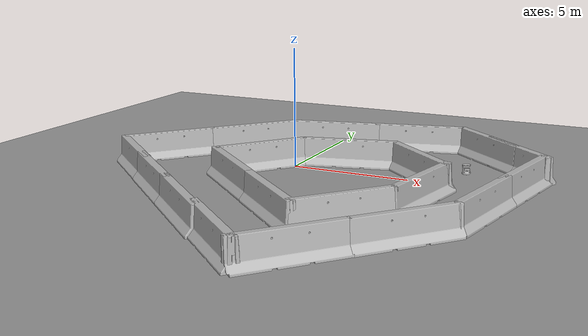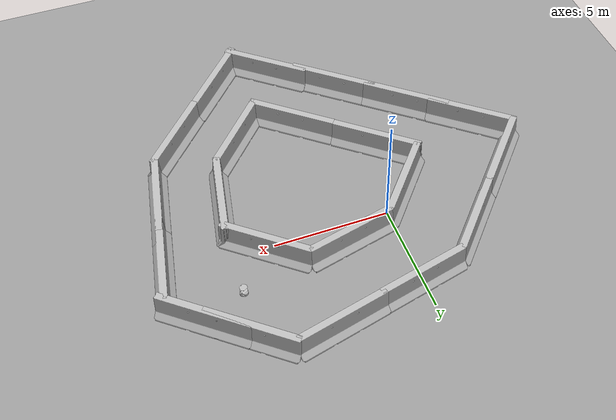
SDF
<sdf version="1.6">
 <world name="default">
  <light name="sun" type="directional">
   <pose>0 0 10 0 -0 0</pose>
   <diffuse>0.8 0.8 0.8 1</diffuse>
   <specular>0.2 0.2 0.2 1</specular>
   <attenuation>
    <range>1000</range>
    <constant>0.9</constant>
    <linear>0.01</linear>
    <quadratic>0.001</quadratic>
   </attenuation>
   <direction>0.5 0.1 -0.9</direction>
  </light>
  <scene><ambient>0.4 0.4 0.4 1</ambient><background>0.7 0.7 0.7 1</background><shadows>1</shadows></scene>
  <physics name="default_physics" default="0" type="ode">
   <max_step_size>0.01</max_step_size>
   <real_time_factor>1</real_time_factor>
   <real_time_update_rate>100</real_time_update_rate>
  </physics>
  <model name="jersey_barrier">
   <static>1</static>
   <link name="link">
    <visual name="visual">
     <geometry>
      <mesh><uri>model://jersey_barrier/meshes/jersey_barrier.dae</uri><scale>1 1 1</scale></mesh>
     </geometry>
    </visual>
    <collision name="upright">
     <pose>0 0 0.5715 0 -0 0</pose>
     <geometry><box><size>4.06542 0.3063 1.143</size></box></geometry>
    </collision>
    <collision name="base">
     <pose>0 0 0.032258 0 -0 0</pose>
     <geometry><box><size>4.06542 0.8107 0.064516</size></box></geometry>
    </collision>
    <collision name="base2">
     <pose>0 0 0.1 0 -0 0</pose>
     <geometry><box><size>4.06542 0.65 0.1</size></box></geometry>
    </collision>
    <collision name="base3">
     <pose>0 0 0.2 0 -0 0</pose>
     <geometry><box><size>4.06542 0.5 0.1</size></box></geometry>
    </collision>
    <collision name="left-angle">
     <pose>0 -0.224 0.2401 0.9 -0 0</pose>
     <geometry><box><size>4.06542 0.5 0.064516</size></box></geometry>
    </collision>
    <collision name="right-angle">
     <pose>0 0.224 0.2401 -0.9 0 0</pose>
     <geometry><box><size>4.06542 0.5 0.064516</size></box></geometry>
    </collision>
    <velocity_decay><linear>0</linear><angular>0</angular></velocity_decay>
   </link>
   <pose>-1.10372 -0.883454 0 0 0 -2.26454</pose>
  </model>
  <model name="ground_plane_0">
   <static>1</static>
   <link name="link">
    <collision name="collision">
     <geometry><plane><normal>0 0 1</normal><size>100 100</size></plane></geometry>
     <surface><friction><ode><mu>100</mu><mu2>50</mu2></ode></friction></surface>
    </collision>
    <visual name="visual">
     <cast_shadows>0</cast_shadows>
     <geometry><plane><normal>0 0 1</normal><size>100 100</size></plane></geometry>
     <material>
      <script><uri>file://media/materials/scripts/gazebo.material</uri><name>Gazebo/Grey</name></script>
     </material>
    </visual>
    <velocity_decay><linear>0</linear><angular>0</angular></velocity_decay>
   </link>
   <pose>0.497681 0 0 0 -0 0</pose>
  </model>
  <gravity>0 0 -9.8</gravity>
  <magnetic_field>6e-06 2.3e-05 -4.2e-05</magnetic_field>
  <atmosphere type="adiabatic"/>
  <spherical_coordinates>
   <surface_model>EARTH_WGS84</surface_model>
   <latitude_deg>0</latitude_deg>
   <longitude_deg>0</longitude_deg>
   <elevation>0</elevation>
   <heading_deg>0</heading_deg>
  </spherical_coordinates>
  <model name="mobile_base">
   <link name="base_footprint">
    <inertial>
     <pose>-0.002635 -4.1e-05 0.129243 0 -0 0</pose>
     <mass>4.6973</mass>
     <inertia>
      <ixx>0.1365</ixx>
      <ixy>-2.51802e-05</ixy>
      <ixz>0.0108194</ixz>
      <iyy>0.132157</iyy>
      <iyz>4.89572e-05</iyz>
      <izz>0.0741648</izz>
     </inertia>
    </inertial>
    <collision name="base_footprint_fixed_joint_lump__base_collision">
     <pose>0 0 0.06969 0 -0 0</pose>
     <geometry><cylinder><length>0.10938</length><radius>0.178</radius></cylinder></geometry>
    </collision>
    <collision name="base_footprint_fixed_joint_lump__camera_link_collision_1">
     <pose>-0.087 -0.0015 0.2972 0 -0 0</pose>
     <geometry><box><size>0.073 0.276 0.072</size></box></geometry>
    </collision>
    <collision name="base_footprint_fixed_joint_lump__caster_back_link_collision_2">
     <pose>-0.135 0 0.0192 -1.5708 0 0</pose>
     <geometry><cylinder><length>0.0176</length><radius>0.017</radius></cylinder></geometry>
     <surface>
      <contact><ode><kp>1e+06</kp><kd>100</kd><max_vel>1</max_vel><min_depth>0.001</min_depth></ode></contact>
      <friction><ode><mu>0</mu><mu2>0</mu2></ode></friction>
     </surface>
    </collision>
    <collision name="base_footprint_fixed_joint_lump__caster_front_link_collision_3">
     <pose>0.115 0 0.0172 -1.5708 0 0</pose>
     <geometry><cylinder><length>0.0176</length><radius>0.017</radius></cylinder></geometry>
     <surface>
      <contact><ode><kp>1e+06</kp><kd>100</kd><max_vel>1</max_vel><min_depth>0.001</min_depth></ode></contact>
      <friction><ode><mu>0</mu><mu2>0</mu2></ode></friction>
     </surface>
    </collision>
    <collision name="base_footprint_fixed_joint_lump__mount_asus_xtion_pro_link_collision_4">
     <pose>-0.1024 0 0.2822 0 -0 0</pose>
     <geometry><box><size>0.033 0.276 0.012</size></box></geometry>
    </collision>
    <collision name="base_footprint_fixed_joint_lump__plate_bottom_link_collision_5">
     <pose>0 0 0.1408 0 -0 0</pose>
     <geometry><cylinder><length>0.006</length><radius>0.17</radius></cylinder></geometry>
    </collision>
    <collision name="base_footprint_fixed_joint_lump__plate_middle_link_collision_6">
     <pose>0 0 0.1976 0 -0 0</pose>
     <geometry><cylinder><length>0.006</length><radius>0.17</radius></cylinder></geometry>
    </collision>
    <collision name="base_footprint_fixed_joint_lump__plate_top_link_collision_7">
     <pose>0 0 0.4068 0 -0 0</pose>
     <geometry><cylinder><length>0.006</length><radius>0.17</radius></cylinder></geometry>
    </collision>
    <collision name="base_footprint_fixed_joint_lump__pole_bottom_0_link_collision_8">
     <pose>0.12 0.082 0.113 0 -0 0</pose>
     <geometry><cylinder><length>0.0492</length><radius>0.006</radius></cylinder></geometry>
    </collision>
    <collision name="base_footprint_fixed_joint_lump__pole_bottom_1_link_collision_9">
     <pose>0.055 0.12 0.113 0 -0 0</pose>
     <geometry><cylinder><length>0.0492</length><radius>0.006</radius></cylinder></geometry>
    </collision>
    <collision name="base_footprint_fixed_joint_lump__pole_bottom_2_link_collision_10">
     <pose>-0.055 0.12 0.113 0 -0 0</pose>
     <geometry><cylinder><length>0.0492</length><radius>0.006</radius></cylinder></geometry>
    </collision>
    <collision name="base_footprint_fixed_joint_lump__pole_bottom_3_link_collision_11">
     <pose>0.12 -0.082 0.113 0 -0 0</pose>
     <geometry><cylinder><length>0.0492</length><radius>0.006</radius></cylinder></geometry>
    </collision>
    <collision name="base_footprint_fixed_joint_lump__pole_bottom_4_link_collision_12">
     <pose>0.055 -0.12 0.113 0 -0 0</pose>
     <geometry><cylinder><length>0.0492</length><radius>0.006</radius></cylinder></geometry>
    </collision>
    <collision name="base_footprint_fixed_joint_lump__pole_bottom_5_link_collision_13">
     <pose>-0.055 -0.12 0.113 0 -0 0</pose>
     <geometry><cylinder><length>0.0492</length><radius>0.006</radius></cylinder></geometry>
    </collision>
    <collision name="base_footprint_fixed_joint_lump__pole_kinect_0_link_collision_14">
     <pose>-0.1024 0.098 0.2474 0 -0 0</pose>
     <geometry><cylinder><length>0.0936</length><radius>0.006</radius></cylinder></geometry>
    </collision>
    <collision name="base_footprint_fixed_joint_lump__pole_kinect_1_link_collision_15">
     <pose>-0.1024 -0.098 0.2474 0 -0 0</pose>
     <geometry><cylinder><length>0.0936</length><radius>0.006</radius></cylinder></geometry>
    </collision>
    <collision name="base_footprint_fixed_joint_lump__pole_middle_0_link_collision_16">
     <pose>0.0381 0.1505 0.1742 0 -0 0</pose>
     <geometry><cylinder><length>0.0608</length><radius>0.006</radius></cylinder></geometry>
    </collision>
    <collision name="base_footprint_fixed_joint_lump__pole_middle_1_link_collision_17">
     <pose>0.0381 -0.1505 0.1742 0 -0 0</pose>
     <geometry><cylinder><length>0.0608</length><radius>0.006</radius></cylinder></geometry>
    </collision>
    <collision name="base_footprint_fixed_joint_lump__pole_middle_2_link_collision_18">
     <pose>-0.0381 0.1505 0.1742 0 -0 0</pose>
     <geometry><cylinder><length>0.0608</length><radius>0.006</radius></cylinder></geometry>
    </collision>
    <collision name="base_footprint_fixed_joint_lump__pole_middle_3_link_collision_19">
     <pose>-0.0381 -0.1505 0.1742 0 -0 0</pose>
     <geometry><cylinder><length>0.0608</length><radius>0.006</radius></cylinder></geometry>
    </collision>
    <collision name="base_footprint_fixed_joint_lump__pole_top_0_link_collision_20">
     <pose>0.0381 0.1505 0.3022 0 -0 0</pose>
     <geometry><cylinder><length>0.2032</length><radius>0.006</radius></cylinder></geometry>
    </collision>
    <collision name="base_footprint_fixed_joint_lump__pole_top_1_link_collision_21">
     <pose>0.0381 -0.1505 0.3022 0 -0 0</pose>
     <geometry><cylinder><length>0.2032</length><radius>0.006</radius></cylinder></geometry>
    </collision>
    <collision name="base_footprint_fixed_joint_lump__pole_top_2_link_collision_22">
     <pose>-0.0381 0.1505 0.3022 0 -0 0</pose>
     <geometry><cylinder><length>0.2032</length><radius>0.006</radius></cylinder></geometry>
    </collision>
    <collision name="base_footprint_fixed_joint_lump__pole_top_3_link_collision_23">
     <pose>-0.0381 -0.1505 0.3022 0 -0 0</pose>
     <geometry><cylinder><length>0.2032</length><radius>0.006</radius></cylinder></geometry>
    </collision>
    <visual name="base_footprint_fixed_joint_lump__base_link_visual">
     <pose>0.001 0 0.06219 0 -0 0</pose>
     <geometry>
      <mesh><scale>1 1 1</scale><uri>/opt/ros/kinetic/share/kobuki_description/meshes/main_body.dae</uri></mesh>
     </geometry>
     <material><script><uri>__default__</uri><name>__default__</name></script></material>
    </visual>
    <visual name="base_footprint_fixed_joint_lump__camera_link_visual_1">
     <pose>-0.102 0.002 0.3012 0 -0 0</pose>
     <geometry>
      <mesh>
       <scale>1 1 1</scale>
       <uri>/opt/ros/kinetic/share/turtlebot_description/meshes/sensors/xtion_pro_camera.dae</uri>
      </mesh>
     </geometry>
     <material><script><uri>__default__</uri><name>__default__</name></script></material>
    </visual>
    <visual name="base_footprint_fixed_joint_lump__mount_asus_xtion_pro_link_visual_2">
     <pose>-0.1024 0 0.2822 -1.5708 0 0</pose>
     <geometry>
      <mesh>
       <scale>1 1 1</scale>
       <uri>/opt/ros/kinetic/share/turtlebot_description/meshes/sensors/xtion_pro_stack.dae</uri>
      </mesh>
     </geometry>
    </visual>
    <visual name="base_footprint_fixed_joint_lump__plate_bottom_link_visual_3">
     <pose>0.02364 0 0.1408 0 -0 0</pose>
     <geometry>
      <mesh>
       <scale>1 1 1</scale>
       <uri>/opt/ros/kinetic/share/turtlebot_description/meshes/stacks/hexagons/plate_bottom.dae</uri>
      </mesh>
     </geometry>
    </visual>
    <visual name="base_footprint_fixed_joint_lump__plate_middle_link_visual_4">
     <pose>-0.01364 0 0.1976 0 -0 0</pose>
     <geometry>
      <mesh>
       <scale>1 1 1</scale>
       <uri>/opt/ros/kinetic/share/turtlebot_description/meshes/stacks/hexagons/plate_middle.dae</uri>
      </mesh>
     </geometry>
    </visual>
    <visual name="base_footprint_fixed_joint_lump__plate_top_link_visual_5">
     <pose>-0.01364 0 0.4068 0 -0 0</pose>
     <geometry>
      <mesh>
       <scale>1 1 1</scale>
       <uri>/opt/ros/kinetic/share/turtlebot_description/meshes/stacks/hexagons/plate_top.dae</uri>
      </mesh>
     </geometry>
    </visual>
    <visual name="base_footprint_fixed_joint_lump__pole_bottom_0_link_visual_6">
     <pose>0.12 0.082 0.113 0 -0 0</pose>
     <geometry>
      <mesh>
       <scale>1 1 1</scale>
       <uri>/opt/ros/kinetic/share/turtlebot_description/meshes/stacks/hexagons/pole_bottom.dae</uri>
      </mesh>
     </geometry>
    </visual>
    <visual name="base_footprint_fixed_joint_lump__pole_bottom_1_link_visual_7">
     <pose>0.055 0.12 0.113 0 -0 0</pose>
     <geometry>
      <mesh>
       <scale>1 1 1</scale>
       <uri>/opt/ros/kinetic/share/turtlebot_description/meshes/stacks/hexagons/pole_bottom.dae</uri>
      </mesh>
     </geometry>
    </visual>
    <visual name="base_footprint_fixed_joint_lump__pole_bottom_2_link_visual_8">
     <pose>-0.055 0.12 0.113 0 -0 0</pose>
     <geometry>
      <mesh>
       <scale>1 1 1</scale>
       <uri>/opt/ros/kinetic/share/turtlebot_description/meshes/stacks/hexagons/pole_bottom.dae</uri>
      </mesh>
     </geometry>
    </visual>
    <visual name="base_footprint_fixed_joint_lump__pole_bottom_3_link_visual_9">
     <pose>0.12 -0.082 0.113 0 -0 0</pose>
     <geometry>
      <mesh>
       <scale>1 1 1</scale>
       <uri>/opt/ros/kinetic/share/turtlebot_description/meshes/stacks/hexagons/pole_bottom.dae</uri>
      </mesh>
     </geometry>
    </visual>
    <visual name="base_footprint_fixed_joint_lump__pole_bottom_4_link_visual_10">
     <pose>0.055 -0.12 0.113 0 -0 0</pose>
     <geometry>
      <mesh>
       <scale>1 1 1</scale>
       <uri>/opt/ros/kinetic/share/turtlebot_description/meshes/stacks/hexagons/pole_bottom.dae</uri>
      </mesh>
     </geometry>
    </visual>
    <visual name="base_footprint_fixed_joint_lump__pole_bottom_5_link_visual_11">
     <pose>-0.055 -0.12 0.113 0 -0 0</pose>
     <geometry>
      <mesh>
       <scale>1 1 1</scale>
       <uri>/opt/ros/kinetic/share/turtlebot_description/meshes/stacks/hexagons/pole_bottom.dae</uri>
      </mesh>
     </geometry>
    </visual>
    <visual name="base_footprint_fixed_joint_lump__pole_kinect_0_link_visual_12">
     <pose>-0.1024 0.098 0.2374 0 -0 0</pose>
     <geometry>
      <mesh>
       <scale>1 1 1</scale>
       <uri>/opt/ros/kinetic/share/turtlebot_description/meshes/sensors/sensor_pole.dae</uri>
      </mesh>
     </geometry>
    </visual>
    <visual name="base_footprint_fixed_joint_lump__pole_kinect_1_link_visual_13">
     <pose>-0.1024 -0.098 0.2374 0 -0 0</pose>
     <geometry>
      <mesh>
       <scale>1 1 1</scale>
       <uri>/opt/ros/kinetic/share/turtlebot_description/meshes/sensors/sensor_pole.dae</uri>
      </mesh>
     </geometry>
    </visual>
    <visual name="base_footprint_fixed_joint_lump__pole_middle_0_link_visual_14">
     <pose>0.0381 0.1505 0.1742 3.14159 -0 3.14159</pose>
     <geometry>
      <mesh>
       <scale>1 1 1</scale>
       <uri>/opt/ros/kinetic/share/turtlebot_description/meshes/stacks/hexagons/pole_middle.dae</uri>
      </mesh>
     </geometry>
    </visual>
    <visual name="base_footprint_fixed_joint_lump__pole_middle_1_link_visual_15">
     <pose>0.0381 -0.1505 0.1742 3.14159 -0 3.14159</pose>
     <geometry>
      <mesh>
       <scale>1 1 1</scale>
       <uri>/opt/ros/kinetic/share/turtlebot_description/meshes/stacks/hexagons/pole_middle.dae</uri>
      </mesh>
     </geometry>
    </visual>
    <visual name="base_footprint_fixed_joint_lump__pole_middle_2_link_visual_16">
     <pose>-0.0381 0.1505 0.1742 3.14159 -0 3.14159</pose>
     <geometry>
      <mesh>
       <scale>1 1 1</scale>
       <uri>/opt/ros/kinetic/share/turtlebot_description/meshes/stacks/hexagons/pole_middle.dae</uri>
      </mesh>
     </geometry>
    </visual>
    <visual name="base_footprint_fixed_joint_lump__pole_middle_3_link_visual_17">
     <pose>-0.0381 -0.1505 0.1742 3.14159 -0 3.14159</pose>
     <geometry>
      <mesh>
       <scale>1 1 1</scale>
       <uri>/opt/ros/kinetic/share/turtlebot_description/meshes/stacks/hexagons/pole_middle.dae</uri>
      </mesh>
     </geometry>
    </visual>
    <visual name="base_footprint_fixed_joint_lump__pole_top_0_link_visual_18">
     <pose>0.0381 0.1505 0.3022 0 -0 0</pose>
     <geometry>
      <mesh>
       <scale>1 1 1</scale>
       <uri>/opt/ros/kinetic/share/turtlebot_description/meshes/stacks/hexagons/pole_top.dae</uri>
      </mesh>
     </geometry>
    </visual>
    <visual name="base_footprint_fixed_joint_lump__pole_top_1_link_visual_19">
     <pose>0.0381 -0.1505 0.3022 0 -0 0</pose>
     <geometry>
      <mesh>
       <scale>1 1 1</scale>
       <uri>/opt/ros/kinetic/share/turtlebot_description/meshes/stacks/hexagons/pole_top.dae</uri>
      </mesh>
     </geometry>
    </visual>
    <visual name="base_footprint_fixed_joint_lump__pole_top_2_link_visual_20">
     <pose>-0.0381 0.1505 0.3022 0 -0 0</pose>
     <geometry>
      <mesh>
       <scale>1 1 1</scale>
       <uri>/opt/ros/kinetic/share/turtlebot_description/meshes/stacks/hexagons/pole_top.dae</uri>
      </mesh>
     </geometry>
    </visual>
    <visual name="base_footprint_fixed_joint_lump__pole_top_3_link_visual_21">
     <pose>-0.0381 -0.1505 0.3022 0 -0 0</pose>
     <geometry>
      <mesh>
       <scale>1 1 1</scale>
       <uri>/opt/ros/kinetic/share/turtlebot_description/meshes/stacks/hexagons/pole_top.dae</uri>
      </mesh>
     </geometry>
    </visual>
    <sensor name="bumpers" type="contact">
     <always_on>1</always_on>
     <update_rate>50</update_rate>
     <visualize>1</visualize>
     <contact>
      <collision>base_footprint_fixed_joint_lump__base_collision</collision>
      <topic>__default_topic__</topic>
     </contact>
     <pose>0 0 0.0102 0 -0 0</pose>
    </sensor>
    <sensor name="camera" type="depth">
     <always_on>1</always_on>
     <update_rate>20</update_rate>
     <camera name="__default__">
      <horizontal_fov>1.0472</horizontal_fov>
      <image><format>B8G8R8</format><width>640</width><height>480</height></image>
      <clip><near>0.05</near><far>8</far></clip>
     </camera>
     <plugin name="kinect_camera_controller" filename="libgazebo_ros_openni_kinect.so">
      <cameraName>camera</cameraName>
      <alwaysOn>true</alwaysOn>
      <updateRate>10</updateRate>
      <imageTopicName>rgb/image_raw</imageTopicName>
      <depthImageTopicName>depth/image_raw</depthImageTopicName>
      <pointCloudTopicName>depth/points</pointCloudTopicName>
      <cameraInfoTopicName>rgb/camera_info</cameraInfoTopicName>
      <depthImageCameraInfoTopicName>depth/camera_info</depthImageCameraInfoTopicName>
      <frameName>camera_depth_optical_frame</frameName>
      <baseline>0.1</baseline>
      <distortion_k1>0.0</distortion_k1>
      <distortion_k2>0.0</distortion_k2>
      <distortion_k3>0.0</distortion_k3>
      <distortion_t1>0.0</distortion_t1>
      <distortion_t2>0.0</distortion_t2>
      <pointCloudCutoff>0.4</pointCloudCutoff>
      <robotNamespace>/</robotNamespace>
     </plugin>
     <pose>-0.087 -0.0015 0.2972 0 -0 0</pose>
    </sensor>
    <sensor name="cliff_sensor_front" type="ray">
     <always_on>1</always_on>
     <update_rate>50</update_rate>
     <visualize>1</visualize>
     <ray>
      <scan>
       <horizontal>
        <samples>50</samples>
        <resolution>1</resolution>
        <min_angle>-0.0436</min_angle>
        <max_angle>0.0436</max_angle>
       </horizontal>
       <vertical><samples>1</samples><min_angle>0</min_angle><max_angle>0</max_angle></vertical>
      </scan>
      <range><min>0.01</min><max>0.15</max><resolution>1</resolution></range>
     </ray>
     <pose>0.156 0 0.0316 3.14159 1.57079 3.14159</pose>
    </sensor>
    <sensor name="cliff_sensor_left" type="ray">
     <always_on>1</always_on>
     <update_rate>50</update_rate>
     <visualize>1</visualize>
     <ray>
      <scan>
       <horizontal>
        <samples>50</samples>
        <resolution>1</resolution>
        <min_angle>-0.0436</min_angle>
        <max_angle>0.0436</max_angle>
       </horizontal>
       <vertical><samples>1</samples><min_angle>0</min_angle><max_angle>0</max_angle></vertical>
      </scan>
      <range><min>0.01</min><max>0.15</max><resolution>1</resolution></range>
     </ray>
     <pose>0.08734 0.13601 0.0316 3.14159 1.57079 3.14159</pose>
    </sensor>
    <sensor name="cliff_sensor_right" type="ray">
     <always_on>1</always_on>
     <update_rate>50</update_rate>
     <visualize>1</visualize>
     <ray>
      <scan>
       <horizontal>
        <samples>50</samples>
        <resolution>1</resolution>
        <min_angle>-0.0436</min_angle>
        <max_angle>0.0436</max_angle>
       </horizontal>
       <vertical><samples>1</samples><min_angle>0</min_angle><max_angle>0</max_angle></vertical>
      </scan>
      <range><min>0.01</min><max>0.15</max><resolution>1</resolution></range>
     </ray>
     <pose>0.085 -0.13601 0.0316 3.14159 1.57079 3.14159</pose>
    </sensor>
    <sensor name="imu" type="imu">
     <always_on>1</always_on>
     <update_rate>50</update_rate>
     <visualize>0</visualize>
     <imu>
      <angular_velocity>
       <x>
        <noise type="gaussian">
         <mean>0</mean>
         <stddev>1.96e-06</stddev>
         <bias_mean>0</bias_mean>
         <bias_stddev>0</bias_stddev>
        </noise>
       </x>
       <y>
        <noise type="gaussian">
         <mean>0</mean>
         <stddev>1.96e-06</stddev>
         <bias_mean>0</bias_mean>
         <bias_stddev>0</bias_stddev>
        </noise>
       </y>
       <z>
        <noise type="gaussian">
         <mean>0</mean>
         <stddev>1.96e-06</stddev>
         <bias_mean>0</bias_mean>
         <bias_stddev>0</bias_stddev>
        </noise>
       </z>
      </angular_velocity>
      <linear_acceleration>
       <x>
        <noise type="gaussian">
         <mean>0</mean>
         <stddev>0.017</stddev>
         <bias_mean>0.1</bias_mean>
         <bias_stddev>0.001</bias_stddev>
        </noise>
       </x>
       <y>
        <noise type="gaussian">
         <mean>0</mean>
         <stddev>0.017</stddev>
         <bias_mean>0.1</bias_mean>
         <bias_stddev>0.001</bias_stddev>
        </noise>
       </y>
       <z>
        <noise type="gaussian">
         <mean>0</mean>
         <stddev>0.017</stddev>
         <bias_mean>0.1</bias_mean>
         <bias_stddev>0.001</bias_stddev>
        </noise>
       </z>
      </linear_acceleration>
     </imu>
     <pose>0.056 0.062 0.0304 0 -0 0</pose>
    </sensor>
   </link>
   <link name="wheel_left_link">
    <pose>0 0.115 0.0352 -1.5708 0 0</pose>
    <inertial>
     <mass>0.01</mass>
     <inertia><ixx>0.001</ixx><ixy>0</ixy><ixz>0</ixz><iyy>0.001</iyy><iyz>0</iyz><izz>0.001</izz></inertia>
    </inertial>
    <collision name="wheel_left_link_collision">
     <geometry><cylinder><length>0.0206</length><radius>0.0352</radius></cylinder></geometry>
     <surface>
      <contact><ode><kp>1e+06</kp><kd>100</kd><max_vel>1</max_vel><min_depth>0.001</min_depth></ode></contact>
      <friction><ode><mu>1</mu><mu2>1</mu2></ode></friction>
     </surface>
    </collision>
    <visual name="wheel_left_link_visual">
     <geometry>
      <mesh><scale>1 1 1</scale><uri>/opt/ros/kinetic/share/kobuki_description/meshes/wheel.dae</uri></mesh>
     </geometry>
     <material><script><uri>__default__</uri><name>__default__</name></script></material>
    </visual>
   </link>
   <joint name="wheel_left_joint" type="revolute">
    <child>wheel_left_link</child>
    <parent>base_footprint</parent>
    <axis>
     <xyz>0 1 0</xyz>
     <limit><lower>-1e+16</lower><upper>1e+16</upper></limit>
     <dynamics><spring_reference>0</spring_reference><spring_stiffness>0</spring_stiffness></dynamics>
     <use_parent_model_frame>1</use_parent_model_frame>
    </axis>
   </joint>
   <link name="wheel_right_link">
    <pose>0 -0.115 0.0352 -1.5708 0 0</pose>
    <inertial>
     <mass>0.01</mass>
     <inertia><ixx>0.001</ixx><ixy>0</ixy><ixz>0</ixz><iyy>0.001</iyy><iyz>0</iyz><izz>0.001</izz></inertia>
    </inertial>
    <collision name="wheel_right_link_collision">
     <geometry><cylinder><length>0.0206</length><radius>0.035</radius></cylinder></geometry>
     <surface>
      <contact><ode><kp>1e+06</kp><kd>100</kd><max_vel>1</max_vel><min_depth>0.001</min_depth></ode></contact>
      <friction><ode><mu>1</mu><mu2>1</mu2></ode></friction>
     </surface>
    </collision>
    <visual name="wheel_right_link_visual">
     <geometry>
      <mesh><scale>1 1 1</scale><uri>/opt/ros/kinetic/share/kobuki_description/meshes/wheel.dae</uri></mesh>
     </geometry>
     <material><script><uri>__default__</uri><name>__default__</name></script></material>
    </visual>
   </link>
   <joint name="wheel_right_joint" type="revolute">
    <child>wheel_right_link</child>
    <parent>base_footprint</parent>
    <axis>
     <xyz>0 1 0</xyz>
     <limit><lower>-1e+16</lower><upper>1e+16</upper></limit>
     <dynamics><spring_reference>0</spring_reference><spring_stiffness>0</spring_stiffness></dynamics>
     <use_parent_model_frame>1</use_parent_model_frame>
    </axis>
   </joint>
   <static>0</static>
   <plugin name="kobuki_controller" filename="libgazebo_ros_kobuki.so">
    <publish_tf>1</publish_tf>
    <left_wheel_joint_name>wheel_left_joint</left_wheel_joint_name>
    <right_wheel_joint_name>wheel_right_joint</right_wheel_joint_name>
    <wheel_separation>.230</wheel_separation>
    <wheel_diameter>0.070</wheel_diameter>
    <torque>1.0</torque>
    <velocity_command_timeout>0.6</velocity_command_timeout>
    <cliff_sensor_left_name>cliff_sensor_left</cliff_sensor_left_name>
    <cliff_sensor_center_name>cliff_sensor_front</cliff_sensor_center_name>
    <cliff_sensor_right_name>cliff_sensor_right</cliff_sensor_right_name>
    <cliff_detection_threshold>0.04</cliff_detection_threshold>
    <bumper_name>bumpers</bumper_name>
    <imu_name>imu</imu_name>
    <robotNamespace>/</robotNamespace>
   </plugin>
   <pose>6.87047 1.84222 -0.001131 5.1e-05 -0.007997 2.08074</pose>
  </model>
  <model name="jersey_barrier_clone">
   <static>1</static>
   <link name="link">
    <visual name="visual">
     <geometry>
      <mesh><uri>model://jersey_barrier/meshes/jersey_barrier.dae</uri><scale>1 1 1</scale></mesh>
     </geometry>
    </visual>
    <collision name="upright">
     <pose>0 0 0.5715 0 -0 0</pose>
     <geometry><box><size>4.06542 0.3063 1.143</size></box></geometry>
    </collision>
    <collision name="base">
     <pose>0 0 0.032258 0 -0 0</pose>
     <geometry><box><size>4.06542 0.8107 0.064516</size></box></geometry>
    </collision>
    <collision name="base2">
     <pose>0 0 0.1 0 -0 0</pose>
     <geometry><box><size>4.06542 0.65 0.1</size></box></geometry>
    </collision>
    <collision name="base3">
     <pose>0 0 0.2 0 -0 0</pose>
     <geometry><box><size>4.06542 0.5 0.1</size></box></geometry>
    </collision>
    <collision name="left-angle">
     <pose>0 -0.224 0.2401 0.9 -0 0</pose>
     <geometry><box><size>4.06542 0.5 0.064516</size></box></geometry>
    </collision>
    <collision name="right-angle">
     <pose>0 0.224 0.2401 -0.9 0 0</pose>
     <geometry><box><size>4.06542 0.5 0.064516</size></box></geometry>
    </collision>
    <velocity_decay><linear>0</linear><angular>0</angular></velocity_decay>
   </link>
   <pose>-0.947334 -3.59194 0 0 0 -0.7</pose>
  </model>
  <model name="jersey_barrier_clone_clone">
   <static>1</static>
   <link name="link">
    <visual name="visual">
     <geometry>
      <mesh><uri>model://jersey_barrier/meshes/jersey_barrier.dae</uri><scale>1 1 1</scale></mesh>
     </geometry>
    </visual>
    <collision name="upright">
     <pose>0 0 0.5715 0 -0 0</pose>
     <geometry><box><size>4.06542 0.3063 1.143</size></box></geometry>
    </collision>
    <collision name="base">
     <pose>0 0 0.032258 0 -0 0</pose>
     <geometry><box><size>4.06542 0.8107 0.064516</size></box></geometry>
    </collision>
    <collision name="base2">
     <pose>0 0 0.1 0 -0 0</pose>
     <geometry><box><size>4.06542 0.65 0.1</size></box></geometry>
    </collision>
    <collision name="base3">
     <pose>0 0 0.2 0 -0 0</pose>
     <geometry><box><size>4.06542 0.5 0.1</size></box></geometry>
    </collision>
    <collision name="left-angle">
     <pose>0 -0.224 0.2401 0.9 -0 0</pose>
     <geometry><box><size>4.06542 0.5 0.064516</size></box></geometry>
    </collision>
    <collision name="right-angle">
     <pose>0 0.224 0.2401 -0.9 0 0</pose>
     <geometry><box><size>4.06542 0.5 0.064516</size></box></geometry>
    </collision>
    <velocity_decay><linear>0</linear><angular>0</angular></velocity_decay>
   </link>
   <pose>2.10679 -6.18751 0 0 0 -0.7</pose>
  </model>
  <model name="jersey_barrier_clone_clone_0">
   <static>1</static>
   <link name="link">
    <visual name="visual">
     <geometry>
      <mesh><uri>model://jersey_barrier/meshes/jersey_barrier.dae</uri><scale>1 1 1</scale></mesh>
     </geometry>
    </visual>
    <collision name="upright">
     <pose>0 0 0.5715 0 -0 0</pose>
     <geometry><box><size>4.06542 0.3063 1.143</size></box></geometry>
    </collision>
    <collision name="base">
     <pose>0 0 0.032258 0 -0 0</pose>
     <geometry><box><size>4.06542 0.8107 0.064516</size></box></geometry>
    </collision>
    <collision name="base2">
     <pose>0 0 0.1 0 -0 0</pose>
     <geometry><box><size>4.06542 0.65 0.1</size></box></geometry>
    </collision>
    <collision name="base3">
     <pose>0 0 0.2 0 -0 0</pose>
     <geometry><box><size>4.06542 0.5 0.1</size></box></geometry>
    </collision>
    <collision name="left-angle">
     <pose>0 -0.224 0.2401 0.9 -0 0</pose>
     <geometry><box><size>4.06542 0.5 0.064516</size></box></geometry>
    </collision>
    <collision name="right-angle">
     <pose>0 0.224 0.2401 -0.9 0 0</pose>
     <geometry><box><size>4.06542 0.5 0.064516</size></box></geometry>
    </collision>
    <velocity_decay><linear>0</linear><angular>0</angular></velocity_decay>
   </link>
   <pose>4.78231 -5.97504 0 0 -0 0.84188</pose>
  </model>
  <model name="jersey_barrier_clone_0">
   <static>1</static>
   <link name="link">
    <visual name="visual">
     <geometry>
      <mesh><uri>model://jersey_barrier/meshes/jersey_barrier.dae</uri><scale>1 1 1</scale></mesh>
     </geometry>
    </visual>
    <collision name="upright">
     <pose>0 0 0.5715 0 -0 0</pose>
     <geometry><box><size>4.06542 0.3063 1.143</size></box></geometry>
    </collision>
    <collision name="base">
     <pose>0 0 0.032258 0 -0 0</pose>
     <geometry><box><size>4.06542 0.8107 0.064516</size></box></geometry>
    </collision>
    <collision name="base2">
     <pose>0 0 0.1 0 -0 0</pose>
     <geometry><box><size>4.06542 0.65 0.1</size></box></geometry>
    </collision>
    <collision name="base3">
     <pose>0 0 0.2 0 -0 0</pose>
     <geometry><box><size>4.06542 0.5 0.1</size></box></geometry>
    </collision>
    <collision name="left-angle">
     <pose>0 -0.224 0.2401 0.9 -0 0</pose>
     <geometry><box><size>4.06542 0.5 0.064516</size></box></geometry>
    </collision>
    <collision name="right-angle">
     <pose>0 0.224 0.2401 -0.9 0 0</pose>
     <geometry><box><size>4.06542 0.5 0.064516</size></box></geometry>
    </collision>
    <velocity_decay><linear>0</linear><angular>0</angular></velocity_decay>
   </link>
   <pose>2.02887 1.05426 0 0 0 -2.90827</pose>
  </model>
  <model name="jersey_barrier_clone_0_clone">
   <static>1</static>
   <link name="link">
    <visual name="visual">
     <geometry>
      <mesh><uri>model://jersey_barrier/meshes/jersey_barrier.dae</uri><scale>1 1 1</scale></mesh>
     </geometry>
    </visual>
    <collision name="upright">
     <pose>0 0 0.5715 0 -0 0</pose>
     <geometry><box><size>4.06542 0.3063 1.143</size></box></geometry>
    </collision>
    <collision name="base">
     <pose>0 0 0.032258 0 -0 0</pose>
     <geometry><box><size>4.06542 0.8107 0.064516</size></box></geometry>
    </collision>
    <collision name="base2">
     <pose>0 0 0.1 0 -0 0</pose>
     <geometry><box><size>4.06542 0.65 0.1</size></box></geometry>
    </collision>
    <collision name="base3">
     <pose>0 0 0.2 0 -0 0</pose>
     <geometry><box><size>4.06542 0.5 0.1</size></box></geometry>
    </collision>
    <collision name="left-angle">
     <pose>0 -0.224 0.2401 0.9 -0 0</pose>
     <geometry><box><size>4.06542 0.5 0.064516</size></box></geometry>
    </collision>
    <collision name="right-angle">
     <pose>0 0.224 0.2401 -0.9 0 0</pose>
     <geometry><box><size>4.06542 0.5 0.064516</size></box></geometry>
    </collision>
    <velocity_decay><linear>0</linear><angular>0</angular></velocity_decay>
   </link>
   <pose>6.44463 -2.6513 0 0 -0 1.37858</pose>
  </model>
  <model name="jersey_barrier_clone_clone_clone">
   <static>1</static>
   <link name="link">
    <visual name="visual">
     <geometry>
      <mesh><uri>model://jersey_barrier/meshes/jersey_barrier.dae</uri><scale>1 1 1</scale></mesh>
     </geometry>
    </visual>
    <collision name="upright">
     <pose>0 0 0.5715 0 -0 0</pose>
     <geometry><box><size>4.06542 0.3063 1.143</size></box></geometry>
    </collision>
    <collision name="base">
     <pose>0 0 0.032258 0 -0 0</pose>
     <geometry><box><size>4.06542 0.8107 0.064516</size></box></geometry>
    </collision>
    <collision name="base2">
     <pose>0 0 0.1 0 -0 0</pose>
     <geometry><box><size>4.06542 0.65 0.1</size></box></geometry>
    </collision>
    <collision name="base3">
     <pose>0 0 0.2 0 -0 0</pose>
     <geometry><box><size>4.06542 0.5 0.1</size></box></geometry>
    </collision>
    <collision name="left-angle">
     <pose>0 -0.224 0.2401 0.9 -0 0</pose>
     <geometry><box><size>4.06542 0.5 0.064516</size></box></geometry>
    </collision>
    <collision name="right-angle">
     <pose>0 0.224 0.2401 -0.9 0 0</pose>
     <geometry><box><size>4.06542 0.5 0.064516</size></box></geometry>
    </collision>
    <velocity_decay><linear>0</linear><angular>0</angular></velocity_decay>
   </link>
   <pose>5.39806 0.25278 0 0 0 -0.7</pose>
  </model>
  <model name="jersey_barrier_clone_clone_clone_0">
   <static>1</static>
   <link name="link">
    <visual name="visual">
     <geometry>
      <mesh><uri>model://jersey_barrier/meshes/jersey_barrier.dae</uri><scale>1 1 1</scale></mesh>
     </geometry>
    </visual>
    <collision name="upright">
     <pose>0 0 0.5715 0 -0 0</pose>
     <geometry><box><size>4.06542 0.3063 1.143</size></box></geometry>
    </collision>
    <collision name="base">
     <pose>0 0 0.032258 0 -0 0</pose>
     <geometry><box><size>4.06542 0.8107 0.064516</size></box></geometry>
    </collision>
    <collision name="base2">
     <pose>0 0 0.1 0 -0 0</pose>
     <geometry><box><size>4.06542 0.65 0.1</size></box></geometry>
    </collision>
    <collision name="base3">
     <pose>0 0 0.2 0 -0 0</pose>
     <geometry><box><size>4.06542 0.5 0.1</size></box></geometry>
    </collision>
    <collision name="left-angle">
     <pose>0 -0.224 0.2401 0.9 -0 0</pose>
     <geometry><box><size>4.06542 0.5 0.064516</size></box></geometry>
    </collision>
    <collision name="right-angle">
     <pose>0 0.224 0.2401 -0.9 0 0</pose>
     <geometry><box><size>4.06542 0.5 0.064516</size></box></geometry>
    </collision>
    <velocity_decay><linear>0</linear><angular>0</angular></velocity_decay>
   </link>
   <pose>-5.51506 -3.52262 0 0 0 -0.7</pose>
  </model>
  <model name="jersey_barrier_clone_clone_clone_1">
   <static>1</static>
   <link name="link">
    <visual name="visual">
     <geometry>
      <mesh><uri>model://jersey_barrier/meshes/jersey_barrier.dae</uri><scale>1 1 1</scale></mesh>
     </geometry>
    </visual>
    <collision name="upright">
     <pose>0 0 0.5715 0 -0 0</pose>
     <geometry><box><size>4.06542 0.3063 1.143</size></box></geometry>
    </collision>
    <collision name="base">
     <pose>0 0 0.032258 0 -0 0</pose>
     <geometry><box><size>4.06542 0.8107 0.064516</size></box></geometry>
    </collision>
    <collision name="base2">
     <pose>0 0 0.1 0 -0 0</pose>
     <geometry><box><size>4.06542 0.65 0.1</size></box></geometry>
    </collision>
    <collision name="base3">
     <pose>0 0 0.2 0 -0 0</pose>
     <geometry><box><size>4.06542 0.5 0.1</size></box></geometry>
    </collision>
    <collision name="left-angle">
     <pose>0 -0.224 0.2401 0.9 -0 0</pose>
     <geometry><box><size>4.06542 0.5 0.064516</size></box></geometry>
    </collision>
    <collision name="right-angle">
     <pose>0 0.224 0.2401 -0.9 0 0</pose>
     <geometry><box><size>4.06542 0.5 0.064516</size></box></geometry>
    </collision>
    <velocity_decay><linear>0</linear><angular>0</angular></velocity_decay>
   </link>
   <pose>-3.17511 -5.51928 0 0 0 -0.7</pose>
  </model>
  <model name="jersey_barrier_clone_clone_clone_2">
   <static>1</static>
   <link name="link">
    <visual name="visual">
     <geometry>
      <mesh><uri>model://jersey_barrier/meshes/jersey_barrier.dae</uri><scale>1 1 1</scale></mesh>
     </geometry>
    </visual>
    <collision name="upright">
     <pose>0 0 0.5715 0 -0 0</pose>
     <geometry><box><size>4.06542 0.3063 1.143</size></box></geometry>
    </collision>
    <collision name="base">
     <pose>0 0 0.032258 0 -0 0</pose>
     <geometry><box><size>4.06542 0.8107 0.064516</size></box></geometry>
    </collision>
    <collision name="base2">
     <pose>0 0 0.1 0 -0 0</pose>
     <geometry><box><size>4.06542 0.65 0.1</size></box></geometry>
    </collision>
    <collision name="base3">
     <pose>0 0 0.2 0 -0 0</pose>
     <geometry><box><size>4.06542 0.5 0.1</size></box></geometry>
    </collision>
    <collision name="left-angle">
     <pose>0 -0.224 0.2401 0.9 -0 0</pose>
     <geometry><box><size>4.06542 0.5 0.064516</size></box></geometry>
    </collision>
    <collision name="right-angle">
     <pose>0 0.224 0.2401 -0.9 0 0</pose>
     <geometry><box><size>4.06542 0.5 0.064516</size></box></geometry>
    </collision>
    <velocity_decay><linear>0</linear><angular>0</angular></velocity_decay>
   </link>
   <pose>2.13865 -9.88309 0 0 0 -0.7</pose>
  </model>
  <model name="jersey_barrier_clone_clone_clone_3">
   <static>1</static>
   <link name="link">
    <visual name="visual">
     <geometry>
      <mesh><uri>model://jersey_barrier/meshes/jersey_barrier.dae</uri><scale>1 1 1</scale></mesh>
     </geometry>
    </visual>
    <collision name="upright">
     <pose>0 0 0.5715 0 -0 0</pose>
     <geometry><box><size>4.06542 0.3063 1.143</size></box></geometry>
    </collision>
    <collision name="base">
     <pose>0 0 0.032258 0 -0 0</pose>
     <geometry><box><size>4.06542 0.8107 0.064516</size></box></geometry>
    </collision>
    <collision name="base2">
     <pose>0 0 0.1 0 -0 0</pose>
     <geometry><box><size>4.06542 0.65 0.1</size></box></geometry>
    </collision>
    <collision name="base3">
     <pose>0 0 0.2 0 -0 0</pose>
     <geometry><box><size>4.06542 0.5 0.1</size></box></geometry>
    </collision>
    <collision name="left-angle">
     <pose>0 -0.224 0.2401 0.9 -0 0</pose>
     <geometry><box><size>4.06542 0.5 0.064516</size></box></geometry>
    </collision>
    <collision name="right-angle">
     <pose>0 0.224 0.2401 -0.9 0 0</pose>
     <geometry><box><size>4.06542 0.5 0.064516</size></box></geometry>
    </collision>
    <velocity_decay><linear>0</linear><angular>0</angular></velocity_decay>
   </link>
   <pose>-0.482699 -7.79274 0 0 0 -0.7</pose>
  </model>
  <model name="jersey_barrier_clone_clone_0_clone">
   <static>1</static>
   <link name="link">
    <visual name="visual">
     <geometry>
      <mesh><uri>model://jersey_barrier/meshes/jersey_barrier.dae</uri><scale>1 1 1</scale></mesh>
     </geometry>
    </visual>
    <collision name="upright">
     <pose>0 0 0.5715 0 -0 0</pose>
     <geometry><box><size>4.06542 0.3063 1.143</size></box></geometry>
    </collision>
    <collision name="base">
     <pose>0 0 0.032258 0 -0 0</pose>
     <geometry><box><size>4.06542 0.8107 0.064516</size></box></geometry>
    </collision>
    <collision name="base2">
     <pose>0 0 0.1 0 -0 0</pose>
     <geometry><box><size>4.06542 0.65 0.1</size></box></geometry>
    </collision>
    <collision name="base3">
     <pose>0 0 0.2 0 -0 0</pose>
     <geometry><box><size>4.06542 0.5 0.1</size></box></geometry>
    </collision>
    <collision name="left-angle">
     <pose>0 -0.224 0.2401 0.9 -0 0</pose>
     <geometry><box><size>4.06542 0.5 0.064516</size></box></geometry>
    </collision>
    <collision name="right-angle">
     <pose>0 0.224 0.2401 -0.9 0 0</pose>
     <geometry><box><size>4.06542 0.5 0.064516</size></box></geometry>
    </collision>
    <velocity_decay><linear>0</linear><angular>0</angular></velocity_decay>
   </link>
   <pose>4.70632 -9.72767 0 0 -0 0.84188</pose>
  </model>
  <model name="jersey_barrier_clone_clone_0_clone_0">
   <static>1</static>
   <link name="link">
    <visual name="visual">
     <geometry>
      <mesh><uri>model://jersey_barrier/meshes/jersey_barrier.dae</uri><scale>1 1 1</scale></mesh>
     </geometry>
    </visual>
    <collision name="upright">
     <pose>0 0 0.5715 0 -0 0</pose>
     <geometry><box><size>4.06542 0.3063 1.143</size></box></geometry>
    </collision>
    <collision name="base">
     <pose>0 0 0.032258 0 -0 0</pose>
     <geometry><box><size>4.06542 0.8107 0.064516</size></box></geometry>
    </collision>
    <collision name="base2">
     <pose>0 0 0.1 0 -0 0</pose>
     <geometry><box><size>4.06542 0.65 0.1</size></box></geometry>
    </collision>
    <collision name="base3">
     <pose>0 0 0.2 0 -0 0</pose>
     <geometry><box><size>4.06542 0.5 0.1</size></box></geometry>
    </collision>
    <collision name="left-angle">
     <pose>0 -0.224 0.2401 0.9 -0 0</pose>
     <geometry><box><size>4.06542 0.5 0.064516</size></box></geometry>
    </collision>
    <collision name="right-angle">
     <pose>0 0.224 0.2401 -0.9 0 0</pose>
     <geometry><box><size>4.06542 0.5 0.064516</size></box></geometry>
    </collision>
    <velocity_decay><linear>0</linear><angular>0</angular></velocity_decay>
   </link>
   <pose>-5.68924 -0.885741 0 0 -0 0.84188</pose>
  </model>
  <model name="jersey_barrier_clone_clone_0_clone_1">
   <static>1</static>
   <link name="link">
    <visual name="visual">
     <geometry>
      <mesh><uri>model://jersey_barrier/meshes/jersey_barrier.dae</uri><scale>1 1 1</scale></mesh>
     </geometry>
    </visual>
    <collision name="upright">
     <pose>0 0 0.5715 0 -0 0</pose>
     <geometry><box><size>4.06542 0.3063 1.143</size></box></geometry>
    </collision>
    <collision name="base">
     <pose>0 0 0.032258 0 -0 0</pose>
     <geometry><box><size>4.06542 0.8107 0.064516</size></box></geometry>
    </collision>
    <collision name="base2">
     <pose>0 0 0.1 0 -0 0</pose>
     <geometry><box><size>4.06542 0.65 0.1</size></box></geometry>
    </collision>
    <collision name="base3">
     <pose>0 0 0.2 0 -0 0</pose>
     <geometry><box><size>4.06542 0.5 0.1</size></box></geometry>
    </collision>
    <collision name="left-angle">
     <pose>0 -0.224 0.2401 0.9 -0 0</pose>
     <geometry><box><size>4.06542 0.5 0.064516</size></box></geometry>
    </collision>
    <collision name="right-angle">
     <pose>0 0.224 0.2401 -0.9 0 0</pose>
     <geometry><box><size>4.06542 0.5 0.064516</size></box></geometry>
    </collision>
    <velocity_decay><linear>0</linear><angular>0</angular></velocity_decay>
   </link>
   <pose>7.33653 -6.809 0 0 -0 0.84188</pose>
  </model>
  <model name="jersey_barrier_clone_clone_0_clone_2">
   <static>1</static>
   <link name="link">
    <visual name="visual">
     <geometry>
      <mesh><uri>model://jersey_barrier/meshes/jersey_barrier.dae</uri><scale>1 1 1</scale></mesh>
     </geometry>
    </visual>
    <collision name="upright">
     <pose>0 0 0.5715 0 -0 0</pose>
     <geometry><box><size>4.06542 0.3063 1.143</size></box></geometry>
    </collision>
    <collision name="base">
     <pose>0 0 0.032258 0 -0 0</pose>
     <geometry><box><size>4.06542 0.8107 0.064516</size></box></geometry>
    </collision>
    <collision name="base2">
     <pose>0 0 0.1 0 -0 0</pose>
     <geometry><box><size>4.06542 0.65 0.1</size></box></geometry>
    </collision>
    <collision name="base3">
     <pose>0 0 0.2 0 -0 0</pose>
     <geometry><box><size>4.06542 0.5 0.1</size></box></geometry>
    </collision>
    <collision name="left-angle">
     <pose>0 -0.224 0.2401 0.9 -0 0</pose>
     <geometry><box><size>4.06542 0.5 0.064516</size></box></geometry>
    </collision>
    <collision name="right-angle">
     <pose>0 0.224 0.2401 -0.9 0 0</pose>
     <geometry><box><size>4.06542 0.5 0.064516</size></box></geometry>
    </collision>
    <velocity_decay><linear>0</linear><angular>0</angular></velocity_decay>
   </link>
   <pose>-3.08166 2.02011 0 0 -0 0.84188</pose>
  </model>
  <model name="jersey_barrier_clone_0_clone_clone">
   <static>1</static>
   <link name="link">
    <visual name="visual">
     <geometry>
      <mesh><uri>model://jersey_barrier/meshes/jersey_barrier.dae</uri><scale>1 1 1</scale></mesh>
     </geometry>
    </visual>
    <collision name="upright">
     <pose>0 0 0.5715 0 -0 0</pose>
     <geometry><box><size>4.06542 0.3063 1.143</size></box></geometry>
    </collision>
    <collision name="base">
     <pose>0 0 0.032258 0 -0 0</pose>
     <geometry><box><size>4.06542 0.8107 0.064516</size></box></geometry>
    </collision>
    <collision name="base2">
     <pose>0 0 0.1 0 -0 0</pose>
     <geometry><box><size>4.06542 0.65 0.1</size></box></geometry>
    </collision>
    <collision name="base3">
     <pose>0 0 0.2 0 -0 0</pose>
     <geometry><box><size>4.06542 0.5 0.1</size></box></geometry>
    </collision>
    <collision name="left-angle">
     <pose>0 -0.224 0.2401 0.9 -0 0</pose>
     <geometry><box><size>4.06542 0.5 0.064516</size></box></geometry>
    </collision>
    <collision name="right-angle">
     <pose>0 0.224 0.2401 -0.9 0 0</pose>
     <geometry><box><size>4.06542 0.5 0.064516</size></box></geometry>
    </collision>
    <velocity_decay><linear>0</linear><angular>0</angular></velocity_decay>
   </link>
   <pose>8.93573 -3.53071 0 0 -0 1.37858</pose>
  </model>
  <model name="jersey_barrier_clone_0_clone_clone_0">
   <static>1</static>
   <link name="link">
    <visual name="visual">
     <geometry>
      <mesh><uri>model://jersey_barrier/meshes/jersey_barrier.dae</uri><scale>1 1 1</scale></mesh>
     </geometry>
    </visual>
    <collision name="upright">
     <pose>0 0 0.5715 0 -0 0</pose>
     <geometry><box><size>4.06542 0.3063 1.143</size></box></geometry>
    </collision>
    <collision name="base">
     <pose>0 0 0.032258 0 -0 0</pose>
     <geometry><box><size>4.06542 0.8107 0.064516</size></box></geometry>
    </collision>
    <collision name="base2">
     <pose>0 0 0.1 0 -0 0</pose>
     <geometry><box><size>4.06542 0.65 0.1</size></box></geometry>
    </collision>
    <collision name="base3">
     <pose>0 0 0.2 0 -0 0</pose>
     <geometry><box><size>4.06542 0.5 0.1</size></box></geometry>
    </collision>
    <collision name="left-angle">
     <pose>0 -0.224 0.2401 0.9 -0 0</pose>
     <geometry><box><size>4.06542 0.5 0.064516</size></box></geometry>
    </collision>
    <collision name="right-angle">
     <pose>0 0.224 0.2401 -0.9 0 0</pose>
     <geometry><box><size>4.06542 0.5 0.064516</size></box></geometry>
    </collision>
    <velocity_decay><linear>0</linear><angular>0</angular></velocity_decay>
   </link>
   <pose>9.58662 -0.178699 0 0 -0 1.37858</pose>
  </model>
  <model name="jersey_barrier_clone_0_clone_0">
   <static>1</static>
   <link name="link">
    <visual name="visual">
     <geometry>
      <mesh><uri>model://jersey_barrier/meshes/jersey_barrier.dae</uri><scale>1 1 1</scale></mesh>
     </geometry>
    </visual>
    <collision name="upright">
     <pose>0 0 0.5715 0 -0 0</pose>
     <geometry><box><size>4.06542 0.3063 1.143</size></box></geometry>
    </collision>
    <collision name="base">
     <pose>0 0 0.032258 0 -0 0</pose>
     <geometry><box><size>4.06542 0.8107 0.064516</size></box></geometry>
    </collision>
    <collision name="base2">
     <pose>0 0 0.1 0 -0 0</pose>
     <geometry><box><size>4.06542 0.65 0.1</size></box></geometry>
    </collision>
    <collision name="base3">
     <pose>0 0 0.2 0 -0 0</pose>
     <geometry><box><size>4.06542 0.5 0.1</size></box></geometry>
    </collision>
    <collision name="left-angle">
     <pose>0 -0.224 0.2401 0.9 -0 0</pose>
     <geometry><box><size>4.06542 0.5 0.064516</size></box></geometry>
    </collision>
    <collision name="right-angle">
     <pose>0 0.224 0.2401 -0.9 0 0</pose>
     <geometry><box><size>4.06542 0.5 0.064516</size></box></geometry>
    </collision>
    <velocity_decay><linear>0</linear><angular>0</angular></velocity_decay>
   </link>
   <pose>0.132039 3.94087 0 0 0 -2.90827</pose>
  </model>
  <model name="jersey_barrier_clone_0_clone_1">
   <static>1</static>
   <link name="link">
    <visual name="visual">
     <geometry>
      <mesh><uri>model://jersey_barrier/meshes/jersey_barrier.dae</uri><scale>1 1 1</scale></mesh>
     </geometry>
    </visual>
    <collision name="upright">
     <pose>0 0 0.5715 0 -0 0</pose>
     <geometry><box><size>4.06542 0.3063 1.143</size></box></geometry>
    </collision>
    <collision name="base">
     <pose>0 0 0.032258 0 -0 0</pose>
     <geometry><box><size>4.06542 0.8107 0.064516</size></box></geometry>
    </collision>
    <collision name="base2">
     <pose>0 0 0.1 0 -0 0</pose>
     <geometry><box><size>4.06542 0.65 0.1</size></box></geometry>
    </collision>
    <collision name="base3">
     <pose>0 0 0.2 0 -0 0</pose>
     <geometry><box><size>4.06542 0.5 0.1</size></box></geometry>
    </collision>
    <collision name="left-angle">
     <pose>0 -0.224 0.2401 0.9 -0 0</pose>
     <geometry><box><size>4.06542 0.5 0.064516</size></box></geometry>
    </collision>
    <collision name="right-angle">
     <pose>0 0.224 0.2401 -0.9 0 0</pose>
     <geometry><box><size>4.06542 0.5 0.064516</size></box></geometry>
    </collision>
    <velocity_decay><linear>0</linear><angular>0</angular></velocity_decay>
   </link>
   <pose>3.83946 4.83513 0 0 0 -2.90827</pose>
  </model>
  <model name="jersey_barrier_clone_clone_clone_clone">
   <static>1</static>
   <link name="link">
    <visual name="visual">
     <geometry>
      <mesh><uri>model://jersey_barrier/meshes/jersey_barrier.dae</uri><scale>1 1 1</scale></mesh>
     </geometry>
    </visual>
    <collision name="upright">
     <pose>0 0 0.5715 0 -0 0</pose>
     <geometry><box><size>4.06542 0.3063 1.143</size></box></geometry>
    </collision>
    <collision name="base">
     <pose>0 0 0.032258 0 -0 0</pose>
     <geometry><box><size>4.06542 0.8107 0.064516</size></box></geometry>
    </collision>
    <collision name="base2">
     <pose>0 0 0.1 0 -0 0</pose>
     <geometry><box><size>4.06542 0.65 0.1</size></box></geometry>
    </collision>
    <collision name="base3">
     <pose>0 0 0.2 0 -0 0</pose>
     <geometry><box><size>4.06542 0.5 0.1</size></box></geometry>
    </collision>
    <collision name="left-angle">
     <pose>0 -0.224 0.2401 0.9 -0 0</pose>
     <geometry><box><size>4.06542 0.5 0.064516</size></box></geometry>
    </collision>
    <collision name="right-angle">
     <pose>0 0.224 0.2401 -0.9 0 0</pose>
     <geometry><box><size>4.06542 0.5 0.064516</size></box></geometry>
    </collision>
    <velocity_decay><linear>0</linear><angular>0</angular></velocity_decay>
   </link>
   <pose>7.19707 4.0717 0 0 0 -0.7</pose>
  </model>
  <model name="jersey_barrier_clone_clone_clone_clone_0">
   <static>1</static>
   <link name="link">
    <visual name="visual">
     <geometry>
      <mesh><uri>model://jersey_barrier/meshes/jersey_barrier.dae</uri><scale>1 1 1</scale></mesh>
     </geometry>
    </visual>
    <collision name="upright">
     <pose>0 0 0.5715 0 -0 0</pose>
     <geometry><box><size>4.06542 0.3063 1.143</size></box></geometry>
    </collision>
    <collision name="base">
     <pose>0 0 0.032258 0 -0 0</pose>
     <geometry><box><size>4.06542 0.8107 0.064516</size></box></geometry>
    </collision>
    <collision name="base2">
     <pose>0 0 0.1 0 -0 0</pose>
     <geometry><box><size>4.06542 0.65 0.1</size></box></geometry>
    </collision>
    <collision name="base3">
     <pose>0 0 0.2 0 -0 0</pose>
     <geometry><box><size>4.06542 0.5 0.1</size></box></geometry>
    </collision>
    <collision name="left-angle">
     <pose>0 -0.224 0.2401 0.9 -0 0</pose>
     <geometry><box><size>4.06542 0.5 0.064516</size></box></geometry>
    </collision>
    <collision name="right-angle">
     <pose>0 0.224 0.2401 -0.9 0 0</pose>
     <geometry><box><size>4.06542 0.5 0.064516</size></box></geometry>
    </collision>
    <velocity_decay><linear>0</linear><angular>0</angular></velocity_decay>
   </link>
   <pose>8.69319 2.82122 0 0 0 -0.7</pose>
  </model>
 </world>
</sdf>
